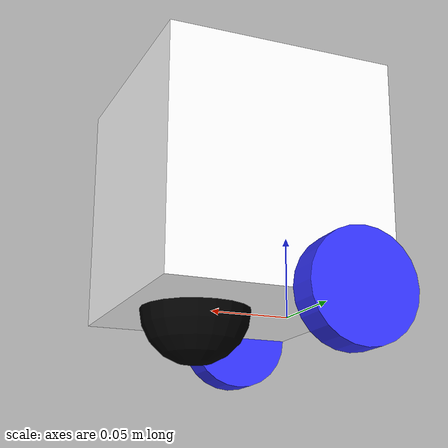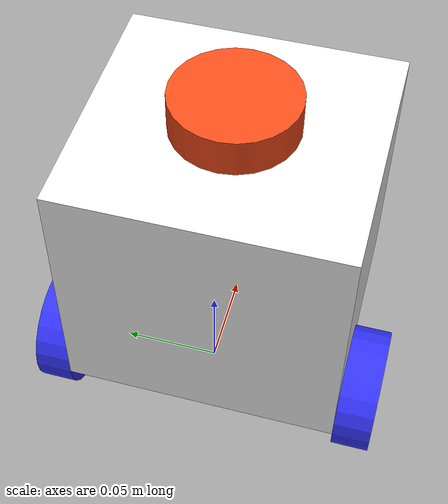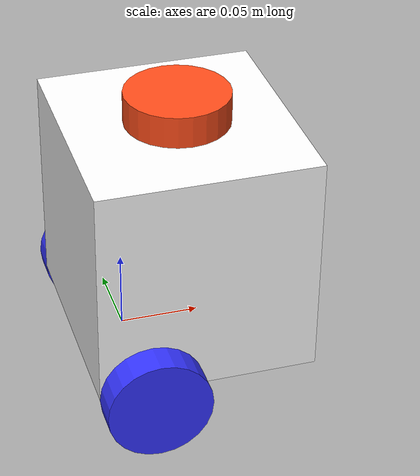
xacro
<?xml version="1.0"?>
<robot xmlns:xacro="http://www.ros.org/wiki/xacro"  name="robot">

    <xacro:arg name="use_ros2_control" default="true"/>

    <xacro:include filename="robot_core.xacro" />

    <xacro:if value="$(arg use_ros2_control)">
        <xacro:include filename="ros2_control.xacro"/>
    </xacro:if>
    <xacro:unless value="$(arg use_ros2_control)">
        <xacro:include filename="gazebo_control.xacro"/>
    </xacro:unless>
    <xacro:include filename="lidar.xacro"/>
</robot>

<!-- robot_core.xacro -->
<robot xmlns:xacro="http://www.ros.org/wiki/xacro" >

    <xacro:include filename="inertial_macros.xacro"/>

    <material name="white">
        <color rgba="1 1 1 1" />
    </material>

    <material name="orange">
        <color rgba="1 0.3 0.1 1" />
    </material>

    <material name="blue">
        <color rgba="0.2 0.2 1 1" />
    </material>

    <material name="black">
        <color rgba="0 0 0 1" />
    </material>

    <link name="base_link">

    </link>

    <!-- BASE FOOTPRINT -->

    <joint name="base_footprint_joint" type="fixed">
        <parent link="base_link"/>
        <child link="base_footprint" />
        <origin xyz="0 0 0" rpy="0 0 0 "/>
    </joint>

    <link name="base_footprint">

    </link>

    <!-- CHASSIS -->

    <joint name="chassis_joint" type="fixed">
        <parent link="base_link"/>
        <child link="chassis" />
        <origin xyz="-0.033 0 0"/>
    </joint>

    <link name="chassis">
        <visual>
            <origin xyz="0.069 0 0.0715"/>
            <geometry>
                <box size="0.138 0.148 0.143"/>
            </geometry>
            <material name="white"/>
        </visual>
        <collision>
            <origin xyz="0.069 0 0.0715"/>
            <geometry>
                <box size="0.138 0.148 0.143"/>
            </geometry>
        </collision>
        <xacro:inertial_box mass="0.8" x="0.138" y="0.148" z="0.143">
            <origin xyz="0.069 0 0.0715" rpy="0 0 0"/>
        </xacro:inertial_box>
    </link>

    <gazebo reference="chassis">
        <material>Gazebo/White</material>
    </gazebo>

    <!-- LEFT WHEEL-->

    <joint name="left_wheel_joint" type="continuous">
        <parent link ="base_link"/>
        <child link="left_wheel"/>
        <origin xyz="0 0.084 0" rpy="-${pi/2} 0 0"/>
        <axis xyz="0 0 1"/>
    </joint>

    <link name="left_wheel">
        <visual>
            <geometry>
                <cylinder radius="0.033" length="0.02"/>
            </geometry>
            <material name="blue"/>
        </visual>
        <collision>
            <geometry>
                <sphere radius="0.033"/>
            </geometry>
        </collision>
        <xacro:inertial_cylinder mass="0.1" length="0.02" radius="0.033">
            <origin xyz="0 0 0" rpy="0 0 0"/>
        </xacro:inertial_cylinder>
    </link>

    <gazebo reference="left_wheel">
        <material>Gazebo/Blue</material>
    </gazebo>

    <!-- RIGHT WHEEL -->

    <joint name="right_wheel_joint" type="continuous">
        <parent link ="base_link"/>
        <child link="right_wheel"/>
        <origin xyz="0 -0.084 0" rpy="${pi/2} 0 0"/>
        <axis xyz="0 0 -1"/>
    </joint>

    <link name="right_wheel">
        <visual>
            <geometry>
                <cylinder radius="0.033" length="0.02"/>
            </geometry>
            <material name="blue"/>
        </visual>
        <collision>
            <geometry>
                <sphere radius="0.033"/>
            </geometry>
        </collision>
        <xacro:inertial_cylinder mass="0.1" length="0.02" radius="0.033">
            <origin xyz="0 0 0" rpy="0 0 0"/>
        </xacro:inertial_cylinder>
    </link>

    <gazebo reference="right_wheel">
        <material>Gazebo/Blue</material>
    </gazebo>

    <!-- CASTER WHEEL -->

    <joint name="caster_wheel_joint" type="fixed">
        <parent link="base_link"/>
        <child link="caster_wheel"/>
        <origin xyz="0.06 0 0"/>
    </joint>

    <link name="caster_wheel">
        <visual>
            <geometry>
                <sphere radius="0.033"/>
            </geometry>
            <material name="black"/>
        </visual>
        <collision>
            <geometry>
                <sphere radius="0.033"/>
            </geometry>
        </collision>
        <xacro:inertial_sphere mass="0.1" radius="0.033">
            <origin xyz="0 0 0" rpy="0 0 0"/>
        </xacro:inertial_sphere>
    </link>

    <gazebo reference="caster_wheel">
        <material>Gazebo/Black</material>
        <mu1 value = "0.001" />
        <mu2 value = "0.001" />
    </gazebo>

</robot>

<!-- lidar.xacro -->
<robot xmlns:xacro="http://www.ros.org/wiki/xacro"  name="robot">

    <joint name ="laser_joint" type="fixed">
        <parent link="chassis"/>
        <child link="laser_frame"/>
        <origin xyz="0.07 0 0.153" rpy =" 0 0 0"/>
    </joint>

    <link name="laser_frame">
        <visual>
            <geometry>
                <cylinder radius="0.033" length="0.02"/>
            </geometry>
            <material name="orange"/>
        </visual>
        <collision>
            <geometry>
                <cylinder radius="0.033" length="0.02"/>
            </geometry>
        </collision>
        <xacro:inertial_cylinder mass="0.1" length="0.02" radius="0.033">
            <origin xyz="0 0 0" rpy="0 0 0"/>
        </xacro:inertial_cylinder>
    </link>

    <gazebo reference="laser_frame">
        <material>Gazebo/Red</material>

        <sensor name="laser" type="ray">
            <pose> 0 0 0 0 0 0 </pose>
            <visualize>true</visualize>
            <update_rate>10</update_rate>
            <ray>
                <scan>
                    <horizontal>
                        <samples>360</samples>
                        <min_angle>-3.14</min_angle>
                        <max_angle>3.14</max_angle>
                    </horizontal>
                </scan>
                <range>
                    <min>0.3</min>
                    <max>12</max>
                </range>
            </ray>
            <plugin name="laser_controller" filename="libgazebo_ros_ray_sensor.so">
                <ros>
                    <argument>~/out:=scan</argument>
                </ros>
                <output_type>sensor_msgs/LaserScan</output_type>
                <frame_name>laser_frame</frame_name>
            </plugin>
        </sensor>
    </gazebo>

</robot>
